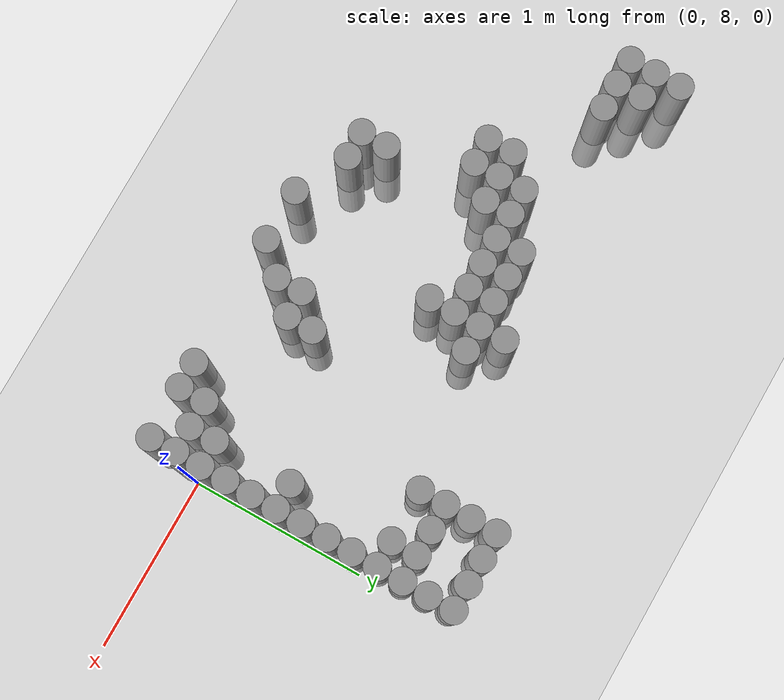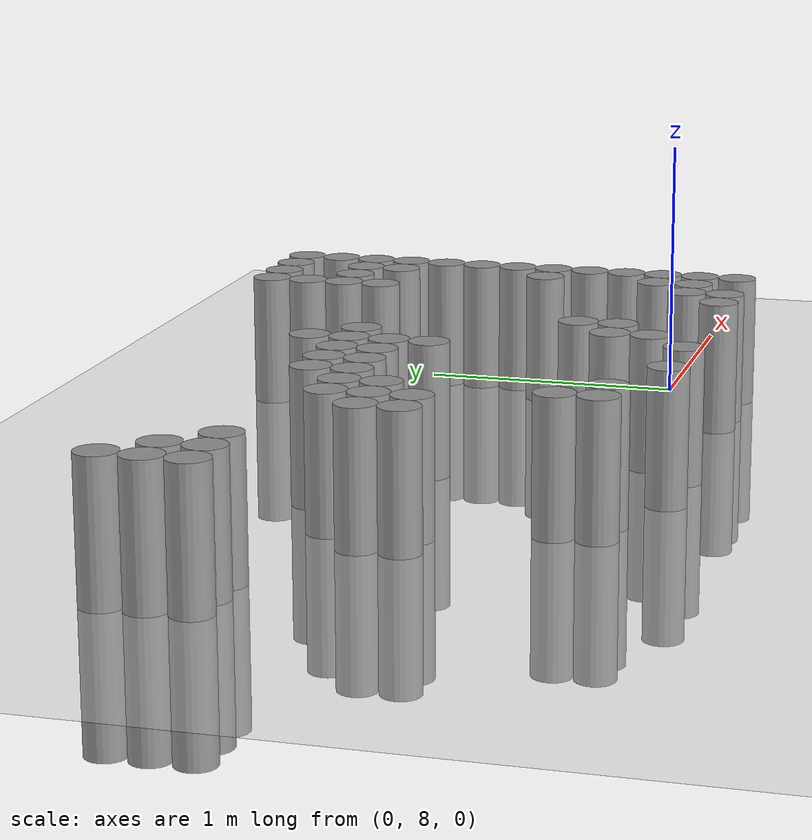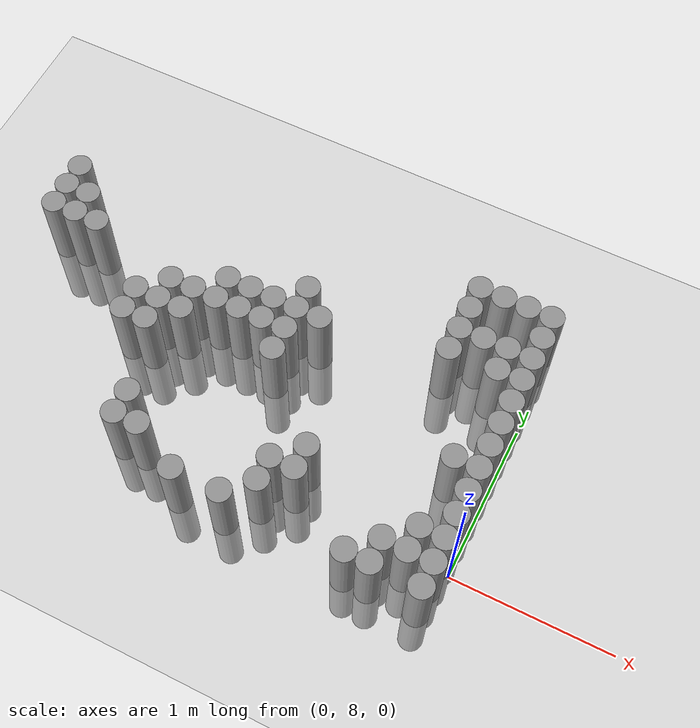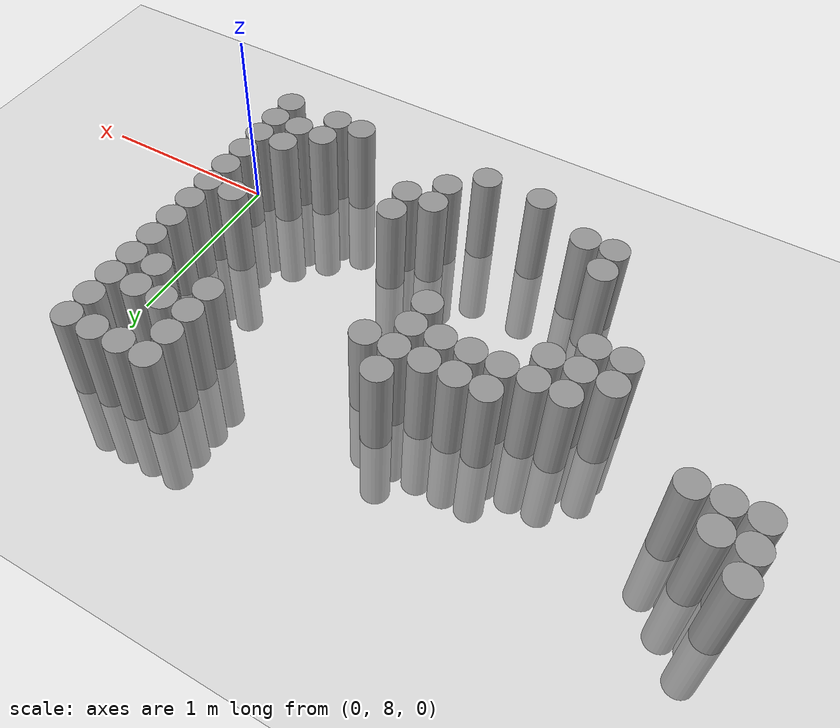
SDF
<sdf version="1.6">
 <world name="default">
  <model name="ground_plane">
   <static>1</static>
   <static>1</static>
   <link name="link">
    <collision name="collision">
     <geometry><plane><normal>0 0 1</normal><size>100 100</size></plane></geometry>
     <surface><friction><ode><mu>100</mu><mu2>50</mu2></ode></friction></surface>
    </collision>
    <visual name="visual">
     <cast_shadows>0</cast_shadows>
     <geometry><plane><normal>0 0 1</normal><size>100 100</size></plane></geometry>
     <material>
      <script><uri>file://media/materials/scripts/gazebo.material</uri><name>Gazebo/Grey</name></script>
     </material>
    </visual>
   </link>
  </model>
  <model name="unit_cylinder_177">
   <static>1</static>
   <pose>-3.075000 8.925000 0.000000 0.000000 0.000000 0.000000</pose>
   <link name="link">
    <inertial>
     <mass>1</mass>
     <inertia><ixx>0.145833</ixx><ixy>0</ixy><ixz>0</ixz><iyy>0.145833</iyy><iyz>0</iyz><izz>0.125</izz></inertia>
    </inertial>
    <collision name="collision">
     <geometry><cylinder><radius>0.075000</radius><length>1</length></cylinder></geometry>
    </collision>
    <visual name="visual">
     <geometry><cylinder><radius>0.075000</radius><length>1</length></cylinder></geometry>
     <material>
      <script><name>Gazebo/Grey</name><uri>file://media/materials/scripts/gazebo.material</uri></script>
     </material>
    </visual>
   </link>
  </model>
  <model name="unit_cylinder_178">
   <static>1</static>
   <pose>-3.075000 9.075000 0.000000 0.000000 0.000000 0.000000</pose>
   <link name="link">
    <inertial>
     <mass>1</mass>
     <inertia><ixx>0.145833</ixx><ixy>0</ixy><ixz>0</ixz><iyy>0.145833</iyy><iyz>0</iyz><izz>0.125</izz></inertia>
    </inertial>
    <collision name="collision">
     <geometry><cylinder><radius>0.075000</radius><length>1</length></cylinder></geometry>
    </collision>
    <visual name="visual">
     <geometry><cylinder><radius>0.075000</radius><length>1</length></cylinder></geometry>
     <material>
      <script><name>Gazebo/Grey</name><uri>file://media/materials/scripts/gazebo.material</uri></script>
     </material>
    </visual>
   </link>
  </model>
  <model name="unit_cylinder_179">
   <static>1</static>
   <pose>-3.075000 9.225000 0.000000 0.000000 0.000000 0.000000</pose>
   <link name="link">
    <inertial>
     <mass>1</mass>
     <inertia><ixx>0.145833</ixx><ixy>0</ixy><ixz>0</ixz><iyy>0.145833</iyy><iyz>0</iyz><izz>0.125</izz></inertia>
    </inertial>
    <collision name="collision">
     <geometry><cylinder><radius>0.075000</radius><length>1</length></cylinder></geometry>
    </collision>
    <visual name="visual">
     <geometry><cylinder><radius>0.075000</radius><length>1</length></cylinder></geometry>
     <material>
      <script><name>Gazebo/Grey</name><uri>file://media/materials/scripts/gazebo.material</uri></script>
     </material>
    </visual>
   </link>
  </model>
  <model name="unit_cylinder_183">
   <static>1</static>
   <pose>-2.925000 8.925000 0.000000 0.000000 0.000000 0.000000</pose>
   <link name="link">
    <inertial>
     <mass>1</mass>
     <inertia><ixx>0.145833</ixx><ixy>0</ixy><ixz>0</ixz><iyy>0.145833</iyy><iyz>0</iyz><izz>0.125</izz></inertia>
    </inertial>
    <collision name="collision">
     <geometry><cylinder><radius>0.075000</radius><length>1</length></cylinder></geometry>
    </collision>
    <visual name="visual">
     <geometry><cylinder><radius>0.075000</radius><length>1</length></cylinder></geometry>
     <material>
      <script><name>Gazebo/Grey</name><uri>file://media/materials/scripts/gazebo.material</uri></script>
     </material>
    </visual>
   </link>
  </model>
  <model name="unit_cylinder_184">
   <static>1</static>
   <pose>-2.925000 9.075000 0.000000 0.000000 0.000000 0.000000</pose>
   <link name="link">
    <inertial>
     <mass>1</mass>
     <inertia><ixx>0.145833</ixx><ixy>0</ixy><ixz>0</ixz><iyy>0.145833</iyy><iyz>0</iyz><izz>0.125</izz></inertia>
    </inertial>
    <collision name="collision">
     <geometry><cylinder><radius>0.075000</radius><length>1</length></cylinder></geometry>
    </collision>
    <visual name="visual">
     <geometry><cylinder><radius>0.075000</radius><length>1</length></cylinder></geometry>
     <material>
      <script><name>Gazebo/Grey</name><uri>file://media/materials/scripts/gazebo.material</uri></script>
     </material>
    </visual>
   </link>
  </model>
  <model name="unit_cylinder_185">
   <static>1</static>
   <pose>-2.775000 8.925000 0.000000 0.000000 0.000000 0.000000</pose>
   <link name="link">
    <inertial>
     <mass>1</mass>
     <inertia><ixx>0.145833</ixx><ixy>0</ixy><ixz>0</ixz><iyy>0.145833</iyy><iyz>0</iyz><izz>0.125</izz></inertia>
    </inertial>
    <collision name="collision">
     <geometry><cylinder><radius>0.075000</radius><length>1</length></cylinder></geometry>
    </collision>
    <visual name="visual">
     <geometry><cylinder><radius>0.075000</radius><length>1</length></cylinder></geometry>
     <material>
      <script><name>Gazebo/Grey</name><uri>file://media/materials/scripts/gazebo.material</uri></script>
     </material>
    </visual>
   </link>
  </model>
  <model name="unit_cylinder_186">
   <static>1</static>
   <pose>-2.325000 8.475000 0.000000 0.000000 0.000000 0.000000</pose>
   <link name="link">
    <inertial>
     <mass>1</mass>
     <inertia><ixx>0.145833</ixx><ixy>0</ixy><ixz>0</ixz><iyy>0.145833</iyy><iyz>0</iyz><izz>0.125</izz></inertia>
    </inertial>
    <collision name="collision">
     <geometry><cylinder><radius>0.075000</radius><length>1</length></cylinder></geometry>
    </collision>
    <visual name="visual">
     <geometry><cylinder><radius>0.075000</radius><length>1</length></cylinder></geometry>
     <material>
      <script><name>Gazebo/Grey</name><uri>file://media/materials/scripts/gazebo.material</uri></script>
     </material>
    </visual>
   </link>
  </model>
  <model name="unit_cylinder_187">
   <static>1</static>
   <pose>-2.325000 8.625000 0.000000 0.000000 0.000000 0.000000</pose>
   <link name="link">
    <inertial>
     <mass>1</mass>
     <inertia><ixx>0.145833</ixx><ixy>0</ixy><ixz>0</ixz><iyy>0.145833</iyy><iyz>0</iyz><izz>0.125</izz></inertia>
    </inertial>
    <collision name="collision">
     <geometry><cylinder><radius>0.075000</radius><length>1</length></cylinder></geometry>
    </collision>
    <visual name="visual">
     <geometry><cylinder><radius>0.075000</radius><length>1</length></cylinder></geometry>
     <material>
      <script><name>Gazebo/Grey</name><uri>file://media/materials/scripts/gazebo.material</uri></script>
     </material>
    </visual>
   </link>
  </model>
  <model name="unit_cylinder_188">
   <static>1</static>
   <pose>-2.175000 8.475000 0.000000 0.000000 0.000000 0.000000</pose>
   <link name="link">
    <inertial>
     <mass>1</mass>
     <inertia><ixx>0.145833</ixx><ixy>0</ixy><ixz>0</ixz><iyy>0.145833</iyy><iyz>0</iyz><izz>0.125</izz></inertia>
    </inertial>
    <collision name="collision">
     <geometry><cylinder><radius>0.075000</radius><length>1</length></cylinder></geometry>
    </collision>
    <visual name="visual">
     <geometry><cylinder><radius>0.075000</radius><length>1</length></cylinder></geometry>
     <material>
      <script><name>Gazebo/Grey</name><uri>file://media/materials/scripts/gazebo.material</uri></script>
     </material>
    </visual>
   </link>
  </model>
  <model name="unit_cylinder_189">
   <static>1</static>
   <pose>-2.175000 8.625000 0.000000 0.000000 0.000000 0.000000</pose>
   <link name="link">
    <inertial>
     <mass>1</mass>
     <inertia><ixx>0.145833</ixx><ixy>0</ixy><ixz>0</ixz><iyy>0.145833</iyy><iyz>0</iyz><izz>0.125</izz></inertia>
    </inertial>
    <collision name="collision">
     <geometry><cylinder><radius>0.075000</radius><length>1</length></cylinder></geometry>
    </collision>
    <visual name="visual">
     <geometry><cylinder><radius>0.075000</radius><length>1</length></cylinder></geometry>
     <material>
      <script><name>Gazebo/Grey</name><uri>file://media/materials/scripts/gazebo.material</uri></script>
     </material>
    </visual>
   </link>
  </model>
  <model name="unit_cylinder_190">
   <static>1</static>
   <pose>-2.175000 8.775000 0.000000 0.000000 0.000000 0.000000</pose>
   <link name="link">
    <inertial>
     <mass>1</mass>
     <inertia><ixx>0.145833</ixx><ixy>0</ixy><ixz>0</ixz><iyy>0.145833</iyy><iyz>0</iyz><izz>0.125</izz></inertia>
    </inertial>
    <collision name="collision">
     <geometry><cylinder><radius>0.075000</radius><length>1</length></cylinder></geometry>
    </collision>
    <visual name="visual">
     <geometry><cylinder><radius>0.075000</radius><length>1</length></cylinder></geometry>
     <material>
      <script><name>Gazebo/Grey</name><uri>file://media/materials/scripts/gazebo.material</uri></script>
     </material>
    </visual>
   </link>
  </model>
  <model name="unit_cylinder_195">
   <static>1</static>
   <pose>-2.025000 7.875000 0.000000 0.000000 0.000000 0.000000</pose>
   <link name="link">
    <inertial>
     <mass>1</mass>
     <inertia><ixx>0.145833</ixx><ixy>0</ixy><ixz>0</ixz><iyy>0.145833</iyy><iyz>0</iyz><izz>0.125</izz></inertia>
    </inertial>
    <collision name="collision">
     <geometry><cylinder><radius>0.075000</radius><length>1</length></cylinder></geometry>
    </collision>
    <visual name="visual">
     <geometry><cylinder><radius>0.075000</radius><length>1</length></cylinder></geometry>
     <material>
      <script><name>Gazebo/Grey</name><uri>file://media/materials/scripts/gazebo.material</uri></script>
     </material>
    </visual>
   </link>
  </model>
  <model name="unit_cylinder_196">
   <static>1</static>
   <pose>-2.025000 8.025000 0.000000 0.000000 0.000000 0.000000</pose>
   <link name="link">
    <inertial>
     <mass>1</mass>
     <inertia><ixx>0.145833</ixx><ixy>0</ixy><ixz>0</ixz><iyy>0.145833</iyy><iyz>0</iyz><izz>0.125</izz></inertia>
    </inertial>
    <collision name="collision">
     <geometry><cylinder><radius>0.075000</radius><length>1</length></cylinder></geometry>
    </collision>
    <visual name="visual">
     <geometry><cylinder><radius>0.075000</radius><length>1</length></cylinder></geometry>
     <material>
      <script><name>Gazebo/Grey</name><uri>file://media/materials/scripts/gazebo.material</uri></script>
     </material>
    </visual>
   </link>
  </model>
  <model name="unit_cylinder_197">
   <static>1</static>
   <pose>-2.025000 8.625000 0.000000 0.000000 0.000000 0.000000</pose>
   <link name="link">
    <inertial>
     <mass>1</mass>
     <inertia><ixx>0.145833</ixx><ixy>0</ixy><ixz>0</ixz><iyy>0.145833</iyy><iyz>0</iyz><izz>0.125</izz></inertia>
    </inertial>
    <collision name="collision">
     <geometry><cylinder><radius>0.075000</radius><length>1</length></cylinder></geometry>
    </collision>
    <visual name="visual">
     <geometry><cylinder><radius>0.075000</radius><length>1</length></cylinder></geometry>
     <material>
      <script><name>Gazebo/Grey</name><uri>file://media/materials/scripts/gazebo.material</uri></script>
     </material>
    </visual>
   </link>
  </model>
  <model name="unit_cylinder_198">
   <static>1</static>
   <pose>-2.025000 8.775000 0.000000 0.000000 0.000000 0.000000</pose>
   <link name="link">
    <inertial>
     <mass>1</mass>
     <inertia><ixx>0.145833</ixx><ixy>0</ixy><ixz>0</ixz><iyy>0.145833</iyy><iyz>0</iyz><izz>0.125</izz></inertia>
    </inertial>
    <collision name="collision">
     <geometry><cylinder><radius>0.075000</radius><length>1</length></cylinder></geometry>
    </collision>
    <visual name="visual">
     <geometry><cylinder><radius>0.075000</radius><length>1</length></cylinder></geometry>
     <material>
      <script><name>Gazebo/Grey</name><uri>file://media/materials/scripts/gazebo.material</uri></script>
     </material>
    </visual>
   </link>
  </model>
  <model name="unit_cylinder_205">
   <static>1</static>
   <pose>-1.875000 7.875000 0.000000 0.000000 0.000000 0.000000</pose>
   <link name="link">
    <inertial>
     <mass>1</mass>
     <inertia><ixx>0.145833</ixx><ixy>0</ixy><ixz>0</ixz><iyy>0.145833</iyy><iyz>0</iyz><izz>0.125</izz></inertia>
    </inertial>
    <collision name="collision">
     <geometry><cylinder><radius>0.075000</radius><length>1</length></cylinder></geometry>
    </collision>
    <visual name="visual">
     <geometry><cylinder><radius>0.075000</radius><length>1</length></cylinder></geometry>
     <material>
      <script><name>Gazebo/Grey</name><uri>file://media/materials/scripts/gazebo.material</uri></script>
     </material>
    </visual>
   </link>
  </model>
  <model name="unit_cylinder_206">
   <static>1</static>
   <pose>-1.875000 8.775000 0.000000 0.000000 0.000000 0.000000</pose>
   <link name="link">
    <inertial>
     <mass>1</mass>
     <inertia><ixx>0.145833</ixx><ixy>0</ixy><ixz>0</ixz><iyy>0.145833</iyy><iyz>0</iyz><izz>0.125</izz></inertia>
    </inertial>
    <collision name="collision">
     <geometry><cylinder><radius>0.075000</radius><length>1</length></cylinder></geometry>
    </collision>
    <visual name="visual">
     <geometry><cylinder><radius>0.075000</radius><length>1</length></cylinder></geometry>
     <material>
      <script><name>Gazebo/Grey</name><uri>file://media/materials/scripts/gazebo.material</uri></script>
     </material>
    </visual>
   </link>
  </model>
  <model name="unit_cylinder_207">
   <static>1</static>
   <pose>-1.875000 8.925000 0.000000 0.000000 0.000000 0.000000</pose>
   <link name="link">
    <inertial>
     <mass>1</mass>
     <inertia><ixx>0.145833</ixx><ixy>0</ixy><ixz>0</ixz><iyy>0.145833</iyy><iyz>0</iyz><izz>0.125</izz></inertia>
    </inertial>
    <collision name="collision">
     <geometry><cylinder><radius>0.075000</radius><length>1</length></cylinder></geometry>
    </collision>
    <visual name="visual">
     <geometry><cylinder><radius>0.075000</radius><length>1</length></cylinder></geometry>
     <material>
      <script><name>Gazebo/Grey</name><uri>file://media/materials/scripts/gazebo.material</uri></script>
     </material>
    </visual>
   </link>
  </model>
  <model name="unit_cylinder_215">
   <static>1</static>
   <pose>-1.725000 8.775000 0.000000 0.000000 0.000000 0.000000</pose>
   <link name="link">
    <inertial>
     <mass>1</mass>
     <inertia><ixx>0.145833</ixx><ixy>0</ixy><ixz>0</ixz><iyy>0.145833</iyy><iyz>0</iyz><izz>0.125</izz></inertia>
    </inertial>
    <collision name="collision">
     <geometry><cylinder><radius>0.075000</radius><length>1</length></cylinder></geometry>
    </collision>
    <visual name="visual">
     <geometry><cylinder><radius>0.075000</radius><length>1</length></cylinder></geometry>
     <material>
      <script><name>Gazebo/Grey</name><uri>file://media/materials/scripts/gazebo.material</uri></script>
     </material>
    </visual>
   </link>
  </model>
  <model name="unit_cylinder_216">
   <static>1</static>
   <pose>-1.725000 8.925000 0.000000 0.000000 0.000000 0.000000</pose>
   <link name="link">
    <inertial>
     <mass>1</mass>
     <inertia><ixx>0.145833</ixx><ixy>0</ixy><ixz>0</ixz><iyy>0.145833</iyy><iyz>0</iyz><izz>0.125</izz></inertia>
    </inertial>
    <collision name="collision">
     <geometry><cylinder><radius>0.075000</radius><length>1</length></cylinder></geometry>
    </collision>
    <visual name="visual">
     <geometry><cylinder><radius>0.075000</radius><length>1</length></cylinder></geometry>
     <material>
      <script><name>Gazebo/Grey</name><uri>file://media/materials/scripts/gazebo.material</uri></script>
     </material>
    </visual>
   </link>
  </model>
  <model name="unit_cylinder_222">
   <static>1</static>
   <pose>-1.575000 7.725000 0.000000 0.000000 0.000000 0.000000</pose>
   <link name="link">
    <inertial>
     <mass>1</mass>
     <inertia><ixx>0.145833</ixx><ixy>0</ixy><ixz>0</ixz><iyy>0.145833</iyy><iyz>0</iyz><izz>0.125</izz></inertia>
    </inertial>
    <collision name="collision">
     <geometry><cylinder><radius>0.075000</radius><length>1</length></cylinder></geometry>
    </collision>
    <visual name="visual">
     <geometry><cylinder><radius>0.075000</radius><length>1</length></cylinder></geometry>
     <material>
      <script><name>Gazebo/Grey</name><uri>file://media/materials/scripts/gazebo.material</uri></script>
     </material>
    </visual>
   </link>
  </model>
  <model name="unit_cylinder_223">
   <static>1</static>
   <pose>-1.575000 8.775000 0.000000 0.000000 0.000000 0.000000</pose>
   <link name="link">
    <inertial>
     <mass>1</mass>
     <inertia><ixx>0.145833</ixx><ixy>0</ixy><ixz>0</ixz><iyy>0.145833</iyy><iyz>0</iyz><izz>0.125</izz></inertia>
    </inertial>
    <collision name="collision">
     <geometry><cylinder><radius>0.075000</radius><length>1</length></cylinder></geometry>
    </collision>
    <visual name="visual">
     <geometry><cylinder><radius>0.075000</radius><length>1</length></cylinder></geometry>
     <material>
      <script><name>Gazebo/Grey</name><uri>file://media/materials/scripts/gazebo.material</uri></script>
     </material>
    </visual>
   </link>
  </model>
  <model name="unit_cylinder_224">
   <static>1</static>
   <pose>-1.575000 8.925000 0.000000 0.000000 0.000000 0.000000</pose>
   <link name="link">
    <inertial>
     <mass>1</mass>
     <inertia><ixx>0.145833</ixx><ixy>0</ixy><ixz>0</ixz><iyy>0.145833</iyy><iyz>0</iyz><izz>0.125</izz></inertia>
    </inertial>
    <collision name="collision">
     <geometry><cylinder><radius>0.075000</radius><length>1</length></cylinder></geometry>
    </collision>
    <visual name="visual">
     <geometry><cylinder><radius>0.075000</radius><length>1</length></cylinder></geometry>
     <material>
      <script><name>Gazebo/Grey</name><uri>file://media/materials/scripts/gazebo.material</uri></script>
     </material>
    </visual>
   </link>
  </model>
  <model name="unit_cylinder_228">
   <static>1</static>
   <pose>-1.425000 8.625000 0.000000 0.000000 0.000000 0.000000</pose>
   <link name="link">
    <inertial>
     <mass>1</mass>
     <inertia><ixx>0.145833</ixx><ixy>0</ixy><ixz>0</ixz><iyy>0.145833</iyy><iyz>0</iyz><izz>0.125</izz></inertia>
    </inertial>
    <collision name="collision">
     <geometry><cylinder><radius>0.075000</radius><length>1</length></cylinder></geometry>
    </collision>
    <visual name="visual">
     <geometry><cylinder><radius>0.075000</radius><length>1</length></cylinder></geometry>
     <material>
      <script><name>Gazebo/Grey</name><uri>file://media/materials/scripts/gazebo.material</uri></script>
     </material>
    </visual>
   </link>
  </model>
  <model name="unit_cylinder_229">
   <static>1</static>
   <pose>-1.425000 8.775000 0.000000 0.000000 0.000000 0.000000</pose>
   <link name="link">
    <inertial>
     <mass>1</mass>
     <inertia><ixx>0.145833</ixx><ixy>0</ixy><ixz>0</ixz><iyy>0.145833</iyy><iyz>0</iyz><izz>0.125</izz></inertia>
    </inertial>
    <collision name="collision">
     <geometry><cylinder><radius>0.075000</radius><length>1</length></cylinder></geometry>
    </collision>
    <visual name="visual">
     <geometry><cylinder><radius>0.075000</radius><length>1</length></cylinder></geometry>
     <material>
      <script><name>Gazebo/Grey</name><uri>file://media/materials/scripts/gazebo.material</uri></script>
     </material>
    </visual>
   </link>
  </model>
  <model name="unit_cylinder_230">
   <static>1</static>
   <pose>-1.425000 8.925000 0.000000 0.000000 0.000000 0.000000</pose>
   <link name="link">
    <inertial>
     <mass>1</mass>
     <inertia><ixx>0.145833</ixx><ixy>0</ixy><ixz>0</ixz><iyy>0.145833</iyy><iyz>0</iyz><izz>0.125</izz></inertia>
    </inertial>
    <collision name="collision">
     <geometry><cylinder><radius>0.075000</radius><length>1</length></cylinder></geometry>
    </collision>
    <visual name="visual">
     <geometry><cylinder><radius>0.075000</radius><length>1</length></cylinder></geometry>
     <material>
      <script><name>Gazebo/Grey</name><uri>file://media/materials/scripts/gazebo.material</uri></script>
     </material>
    </visual>
   </link>
  </model>
  <model name="unit_cylinder_231">
   <static>1</static>
   <pose>-1.425000 9.075000 0.000000 0.000000 0.000000 0.000000</pose>
   <link name="link">
    <inertial>
     <mass>1</mass>
     <inertia><ixx>0.145833</ixx><ixy>0</ixy><ixz>0</ixz><iyy>0.145833</iyy><iyz>0</iyz><izz>0.125</izz></inertia>
    </inertial>
    <collision name="collision">
     <geometry><cylinder><radius>0.075000</radius><length>1</length></cylinder></geometry>
    </collision>
    <visual name="visual">
     <geometry><cylinder><radius>0.075000</radius><length>1</length></cylinder></geometry>
     <material>
      <script><name>Gazebo/Grey</name><uri>file://media/materials/scripts/gazebo.material</uri></script>
     </material>
    </visual>
   </link>
  </model>
  <model name="unit_cylinder_234">
   <static>1</static>
   <pose>-1.275000 7.725000 0.000000 0.000000 0.000000 0.000000</pose>
   <link name="link">
    <inertial>
     <mass>1</mass>
     <inertia><ixx>0.145833</ixx><ixy>0</ixy><ixz>0</ixz><iyy>0.145833</iyy><iyz>0</iyz><izz>0.125</izz></inertia>
    </inertial>
    <collision name="collision">
     <geometry><cylinder><radius>0.075000</radius><length>1</length></cylinder></geometry>
    </collision>
    <visual name="visual">
     <geometry><cylinder><radius>0.075000</radius><length>1</length></cylinder></geometry>
     <material>
      <script><name>Gazebo/Grey</name><uri>file://media/materials/scripts/gazebo.material</uri></script>
     </material>
    </visual>
   </link>
  </model>
  <model name="unit_cylinder_235">
   <static>1</static>
   <pose>-1.275000 8.925000 0.000000 0.000000 0.000000 0.000000</pose>
   <link name="link">
    <inertial>
     <mass>1</mass>
     <inertia><ixx>0.145833</ixx><ixy>0</ixy><ixz>0</ixz><iyy>0.145833</iyy><iyz>0</iyz><izz>0.125</izz></inertia>
    </inertial>
    <collision name="collision">
     <geometry><cylinder><radius>0.075000</radius><length>1</length></cylinder></geometry>
    </collision>
    <visual name="visual">
     <geometry><cylinder><radius>0.075000</radius><length>1</length></cylinder></geometry>
     <material>
      <script><name>Gazebo/Grey</name><uri>file://media/materials/scripts/gazebo.material</uri></script>
     </material>
    </visual>
   </link>
  </model>
  <model name="unit_cylinder_238">
   <static>1</static>
   <pose>-1.125000 7.875000 0.000000 0.000000 0.000000 0.000000</pose>
   <link name="link">
    <inertial>
     <mass>1</mass>
     <inertia><ixx>0.145833</ixx><ixy>0</ixy><ixz>0</ixz><iyy>0.145833</iyy><iyz>0</iyz><izz>0.125</izz></inertia>
    </inertial>
    <collision name="collision">
     <geometry><cylinder><radius>0.075000</radius><length>1</length></cylinder></geometry>
    </collision>
    <visual name="visual">
     <geometry><cylinder><radius>0.075000</radius><length>1</length></cylinder></geometry>
     <material>
      <script><name>Gazebo/Grey</name><uri>file://media/materials/scripts/gazebo.material</uri></script>
     </material>
    </visual>
   </link>
  </model>
  <model name="unit_cylinder_239">
   <static>1</static>
   <pose>-1.125000 8.025000 0.000000 0.000000 0.000000 0.000000</pose>
   <link name="link">
    <inertial>
     <mass>1</mass>
     <inertia><ixx>0.145833</ixx><ixy>0</ixy><ixz>0</ixz><iyy>0.145833</iyy><iyz>0</iyz><izz>0.125</izz></inertia>
    </inertial>
    <collision name="collision">
     <geometry><cylinder><radius>0.075000</radius><length>1</length></cylinder></geometry>
    </collision>
    <visual name="visual">
     <geometry><cylinder><radius>0.075000</radius><length>1</length></cylinder></geometry>
     <material>
      <script><name>Gazebo/Grey</name><uri>file://media/materials/scripts/gazebo.material</uri></script>
     </material>
    </visual>
   </link>
  </model>
  <model name="unit_cylinder_243">
   <static>1</static>
   <pose>-0.975000 8.025000 0.000000 0.000000 0.000000 0.000000</pose>
   <link name="link">
    <inertial>
     <mass>1</mass>
     <inertia><ixx>0.145833</ixx><ixy>0</ixy><ixz>0</ixz><iyy>0.145833</iyy><iyz>0</iyz><izz>0.125</izz></inertia>
    </inertial>
    <collision name="collision">
     <geometry><cylinder><radius>0.075000</radius><length>1</length></cylinder></geometry>
    </collision>
    <visual name="visual">
     <geometry><cylinder><radius>0.075000</radius><length>1</length></cylinder></geometry>
     <material>
      <script><name>Gazebo/Grey</name><uri>file://media/materials/scripts/gazebo.material</uri></script>
     </material>
    </visual>
   </link>
  </model>
  <model name="unit_cylinder_244">
   <static>1</static>
   <pose>-0.975000 8.175000 0.000000 0.000000 0.000000 0.000000</pose>
   <link name="link">
    <inertial>
     <mass>1</mass>
     <inertia><ixx>0.145833</ixx><ixy>0</ixy><ixz>0</ixz><iyy>0.145833</iyy><iyz>0</iyz><izz>0.125</izz></inertia>
    </inertial>
    <collision name="collision">
     <geometry><cylinder><radius>0.075000</radius><length>1</length></cylinder></geometry>
    </collision>
    <visual name="visual">
     <geometry><cylinder><radius>0.075000</radius><length>1</length></cylinder></geometry>
     <material>
      <script><name>Gazebo/Grey</name><uri>file://media/materials/scripts/gazebo.material</uri></script>
     </material>
    </visual>
   </link>
  </model>
  <model name="unit_cylinder_249">
   <static>1</static>
   <pose>-0.525000 7.725000 0.000000 0.000000 0.000000 0.000000</pose>
   <link name="link">
    <inertial>
     <mass>1</mass>
     <inertia><ixx>0.145833</ixx><ixy>0</ixy><ixz>0</ixz><iyy>0.145833</iyy><iyz>0</iyz><izz>0.125</izz></inertia>
    </inertial>
    <collision name="collision">
     <geometry><cylinder><radius>0.075000</radius><length>1</length></cylinder></geometry>
    </collision>
    <visual name="visual">
     <geometry><cylinder><radius>0.075000</radius><length>1</length></cylinder></geometry>
     <material>
      <script><name>Gazebo/Grey</name><uri>file://media/materials/scripts/gazebo.material</uri></script>
     </material>
    </visual>
   </link>
  </model>
  <model name="unit_cylinder_250">
   <static>1</static>
   <pose>-0.525000 9.075000 0.000000 0.000000 0.000000 0.000000</pose>
   <link name="link">
    <inertial>
     <mass>1</mass>
     <inertia><ixx>0.145833</ixx><ixy>0</ixy><ixz>0</ixz><iyy>0.145833</iyy><iyz>0</iyz><izz>0.125</izz></inertia>
    </inertial>
    <collision name="collision">
     <geometry><cylinder><radius>0.075000</radius><length>1</length></cylinder></geometry>
    </collision>
    <visual name="visual">
     <geometry><cylinder><radius>0.075000</radius><length>1</length></cylinder></geometry>
     <material>
      <script><name>Gazebo/Grey</name><uri>file://media/materials/scripts/gazebo.material</uri></script>
     </material>
    </visual>
   </link>
  </model>
  <model name="unit_cylinder_251">
   <static>1</static>
   <pose>-0.525000 9.225000 0.000000 0.000000 0.000000 0.000000</pose>
   <link name="link">
    <inertial>
     <mass>1</mass>
     <inertia><ixx>0.145833</ixx><ixy>0</ixy><ixz>0</ixz><iyy>0.145833</iyy><iyz>0</iyz><izz>0.125</izz></inertia>
    </inertial>
    <collision name="collision">
     <geometry><cylinder><radius>0.075000</radius><length>1</length></cylinder></geometry>
    </collision>
    <visual name="visual">
     <geometry><cylinder><radius>0.075000</radius><length>1</length></cylinder></geometry>
     <material>
      <script><name>Gazebo/Grey</name><uri>file://media/materials/scripts/gazebo.material</uri></script>
     </material>
    </visual>
   </link>
  </model>
  <model name="unit_cylinder_252">
   <static>1</static>
   <pose>-0.525000 9.375000 0.000000 0.000000 0.000000 0.000000</pose>
   <link name="link">
    <inertial>
     <mass>1</mass>
     <inertia><ixx>0.145833</ixx><ixy>0</ixy><ixz>0</ixz><iyy>0.145833</iyy><iyz>0</iyz><izz>0.125</izz></inertia>
    </inertial>
    <collision name="collision">
     <geometry><cylinder><radius>0.075000</radius><length>1</length></cylinder></geometry>
    </collision>
    <visual name="visual">
     <geometry><cylinder><radius>0.075000</radius><length>1</length></cylinder></geometry>
     <material>
      <script><name>Gazebo/Grey</name><uri>file://media/materials/scripts/gazebo.material</uri></script>
     </material>
    </visual>
   </link>
  </model>
  <model name="unit_cylinder_253">
   <static>1</static>
   <pose>-0.525000 9.525000 0.000000 0.000000 0.000000 0.000000</pose>
   <link name="link">
    <inertial>
     <mass>1</mass>
     <inertia><ixx>0.145833</ixx><ixy>0</ixy><ixz>0</ixz><iyy>0.145833</iyy><iyz>0</iyz><izz>0.125</izz></inertia>
    </inertial>
    <collision name="collision">
     <geometry><cylinder><radius>0.075000</radius><length>1</length></cylinder></geometry>
    </collision>
    <visual name="visual">
     <geometry><cylinder><radius>0.075000</radius><length>1</length></cylinder></geometry>
     <material>
      <script><name>Gazebo/Grey</name><uri>file://media/materials/scripts/gazebo.material</uri></script>
     </material>
    </visual>
   </link>
  </model>
  <model name="unit_cylinder_261">
   <static>1</static>
   <pose>-0.375000 7.725000 0.000000 0.000000 0.000000 0.000000</pose>
   <link name="link">
    <inertial>
     <mass>1</mass>
     <inertia><ixx>0.145833</ixx><ixy>0</ixy><ixz>0</ixz><iyy>0.145833</iyy><iyz>0</iyz><izz>0.125</izz></inertia>
    </inertial>
    <collision name="collision">
     <geometry><cylinder><radius>0.075000</radius><length>1</length></cylinder></geometry>
    </collision>
    <visual name="visual">
     <geometry><cylinder><radius>0.075000</radius><length>1</length></cylinder></geometry>
     <material>
      <script><name>Gazebo/Grey</name><uri>file://media/materials/scripts/gazebo.material</uri></script>
     </material>
    </visual>
   </link>
  </model>
  <model name="unit_cylinder_262">
   <static>1</static>
   <pose>-0.375000 7.875000 0.000000 0.000000 0.000000 0.000000</pose>
   <link name="link">
    <inertial>
     <mass>1</mass>
     <inertia><ixx>0.145833</ixx><ixy>0</ixy><ixz>0</ixz><iyy>0.145833</iyy><iyz>0</iyz><izz>0.125</izz></inertia>
    </inertial>
    <collision name="collision">
     <geometry><cylinder><radius>0.075000</radius><length>1</length></cylinder></geometry>
    </collision>
    <visual name="visual">
     <geometry><cylinder><radius>0.075000</radius><length>1</length></cylinder></geometry>
     <material>
      <script><name>Gazebo/Grey</name><uri>file://media/materials/scripts/gazebo.material</uri></script>
     </material>
    </visual>
   </link>
  </model>
  <model name="unit_cylinder_263">
   <static>1</static>
   <pose>-0.375000 9.225000 0.000000 0.000000 0.000000 0.000000</pose>
   <link name="link">
    <inertial>
     <mass>1</mass>
     <inertia><ixx>0.145833</ixx><ixy>0</ixy><ixz>0</ixz><iyy>0.145833</iyy><iyz>0</iyz><izz>0.125</izz></inertia>
    </inertial>
    <collision name="collision">
     <geometry><cylinder><radius>0.075000</radius><length>1</length></cylinder></geometry>
    </collision>
    <visual name="visual">
     <geometry><cylinder><radius>0.075000</radius><length>1</length></cylinder></geometry>
     <material>
      <script><name>Gazebo/Grey</name><uri>file://media/materials/scripts/gazebo.material</uri></script>
     </material>
    </visual>
   </link>
  </model>
  <model name="unit_cylinder_264">
   <static>1</static>
   <pose>-0.375000 9.525000 0.000000 0.000000 0.000000 0.000000</pose>
   <link name="link">
    <inertial>
     <mass>1</mass>
     <inertia><ixx>0.145833</ixx><ixy>0</ixy><ixz>0</ixz><iyy>0.145833</iyy><iyz>0</iyz><izz>0.125</izz></inertia>
    </inertial>
    <collision name="collision">
     <geometry><cylinder><radius>0.075000</radius><length>1</length></cylinder></geometry>
    </collision>
    <visual name="visual">
     <geometry><cylinder><radius>0.075000</radius><length>1</length></cylinder></geometry>
     <material>
      <script><name>Gazebo/Grey</name><uri>file://media/materials/scripts/gazebo.material</uri></script>
     </material>
    </visual>
   </link>
  </model>
  <model name="unit_cylinder_267">
   <static>1</static>
   <pose>-0.225000 7.875000 0.000000 0.000000 0.000000 0.000000</pose>
   <link name="link">
    <inertial>
     <mass>1</mass>
     <inertia><ixx>0.145833</ixx><ixy>0</ixy><ixz>0</ixz><iyy>0.145833</iyy><iyz>0</iyz><izz>0.125</izz></inertia>
    </inertial>
    <collision name="collision">
     <geometry><cylinder><radius>0.075000</radius><length>1</length></cylinder></geometry>
    </collision>
    <visual name="visual">
     <geometry><cylinder><radius>0.075000</radius><length>1</length></cylinder></geometry>
     <material>
      <script><name>Gazebo/Grey</name><uri>file://media/materials/scripts/gazebo.material</uri></script>
     </material>
    </visual>
   </link>
  </model>
  <model name="unit_cylinder_268">
   <static>1</static>
   <pose>-0.225000 8.025000 0.000000 0.000000 0.000000 0.000000</pose>
   <link name="link">
    <inertial>
     <mass>1</mass>
     <inertia><ixx>0.145833</ixx><ixy>0</ixy><ixz>0</ixz><iyy>0.145833</iyy><iyz>0</iyz><izz>0.125</izz></inertia>
    </inertial>
    <collision name="collision">
     <geometry><cylinder><radius>0.075000</radius><length>1</length></cylinder></geometry>
    </collision>
    <visual name="visual">
     <geometry><cylinder><radius>0.075000</radius><length>1</length></cylinder></geometry>
     <material>
      <script><name>Gazebo/Grey</name><uri>file://media/materials/scripts/gazebo.material</uri></script>
     </material>
    </visual>
   </link>
  </model>
  <model name="unit_cylinder_269">
   <static>1</static>
   <pose>-0.225000 8.475000 0.000000 0.000000 0.000000 0.000000</pose>
   <link name="link">
    <inertial>
     <mass>1</mass>
     <inertia><ixx>0.145833</ixx><ixy>0</ixy><ixz>0</ixz><iyy>0.145833</iyy><iyz>0</iyz><izz>0.125</izz></inertia>
    </inertial>
    <collision name="collision">
     <geometry><cylinder><radius>0.075000</radius><length>1</length></cylinder></geometry>
    </collision>
    <visual name="visual">
     <geometry><cylinder><radius>0.075000</radius><length>1</length></cylinder></geometry>
     <material>
      <script><name>Gazebo/Grey</name><uri>file://media/materials/scripts/gazebo.material</uri></script>
     </material>
    </visual>
   </link>
  </model>
  <model name="unit_cylinder_270">
   <static>1</static>
   <pose>-0.225000 9.075000 0.000000 0.000000 0.000000 0.000000</pose>
   <link name="link">
    <inertial>
     <mass>1</mass>
     <inertia><ixx>0.145833</ixx><ixy>0</ixy><ixz>0</ixz><iyy>0.145833</iyy><iyz>0</iyz><izz>0.125</izz></inertia>
    </inertial>
    <collision name="collision">
     <geometry><cylinder><radius>0.075000</radius><length>1</length></cylinder></geometry>
    </collision>
    <visual name="visual">
     <geometry><cylinder><radius>0.075000</radius><length>1</length></cylinder></geometry>
     <material>
      <script><name>Gazebo/Grey</name><uri>file://media/materials/scripts/gazebo.material</uri></script>
     </material>
    </visual>
   </link>
  </model>
  <model name="unit_cylinder_271">
   <static>1</static>
   <pose>-0.225000 9.225000 0.000000 0.000000 0.000000 0.000000</pose>
   <link name="link">
    <inertial>
     <mass>1</mass>
     <inertia><ixx>0.145833</ixx><ixy>0</ixy><ixz>0</ixz><iyy>0.145833</iyy><iyz>0</iyz><izz>0.125</izz></inertia>
    </inertial>
    <collision name="collision">
     <geometry><cylinder><radius>0.075000</radius><length>1</length></cylinder></geometry>
    </collision>
    <visual name="visual">
     <geometry><cylinder><radius>0.075000</radius><length>1</length></cylinder></geometry>
     <material>
      <script><name>Gazebo/Grey</name><uri>file://media/materials/scripts/gazebo.material</uri></script>
     </material>
    </visual>
   </link>
  </model>
  <model name="unit_cylinder_272">
   <static>1</static>
   <pose>-0.225000 9.525000 0.000000 0.000000 0.000000 0.000000</pose>
   <link name="link">
    <inertial>
     <mass>1</mass>
     <inertia><ixx>0.145833</ixx><ixy>0</ixy><ixz>0</ixz><iyy>0.145833</iyy><iyz>0</iyz><izz>0.125</izz></inertia>
    </inertial>
    <collision name="collision">
     <geometry><cylinder><radius>0.075000</radius><length>1</length></cylinder></geometry>
    </collision>
    <visual name="visual">
     <geometry><cylinder><radius>0.075000</radius><length>1</length></cylinder></geometry>
     <material>
      <script><name>Gazebo/Grey</name><uri>file://media/materials/scripts/gazebo.material</uri></script>
     </material>
    </visual>
   </link>
  </model>
  <model name="unit_cylinder_290">
   <static>1</static>
   <pose>-0.075000 7.725000 0.000000 0.000000 0.000000 0.000000</pose>
   <link name="link">
    <inertial>
     <mass>1</mass>
     <inertia><ixx>0.145833</ixx><ixy>0</ixy><ixz>0</ixz><iyy>0.145833</iyy><iyz>0</iyz><izz>0.125</izz></inertia>
    </inertial>
    <collision name="collision">
     <geometry><cylinder><radius>0.075000</radius><length>1</length></cylinder></geometry>
    </collision>
    <visual name="visual">
     <geometry><cylinder><radius>0.075000</radius><length>1</length></cylinder></geometry>
     <material>
      <script><name>Gazebo/Grey</name><uri>file://media/materials/scripts/gazebo.material</uri></script>
     </material>
    </visual>
   </link>
  </model>
  <model name="unit_cylinder_291">
   <static>1</static>
   <pose>-0.075000 7.875000 0.000000 0.000000 0.000000 0.000000</pose>
   <link name="link">
    <inertial>
     <mass>1</mass>
     <inertia><ixx>0.145833</ixx><ixy>0</ixy><ixz>0</ixz><iyy>0.145833</iyy><iyz>0</iyz><izz>0.125</izz></inertia>
    </inertial>
    <collision name="collision">
     <geometry><cylinder><radius>0.075000</radius><length>1</length></cylinder></geometry>
    </collision>
    <visual name="visual">
     <geometry><cylinder><radius>0.075000</radius><length>1</length></cylinder></geometry>
     <material>
      <script><name>Gazebo/Grey</name><uri>file://media/materials/scripts/gazebo.material</uri></script>
     </material>
    </visual>
   </link>
  </model>
  <model name="unit_cylinder_292">
   <static>1</static>
   <pose>-0.075000 8.025000 0.000000 0.000000 0.000000 0.000000</pose>
   <link name="link">
    <inertial>
     <mass>1</mass>
     <inertia><ixx>0.145833</ixx><ixy>0</ixy><ixz>0</ixz><iyy>0.145833</iyy><iyz>0</iyz><izz>0.125</izz></inertia>
    </inertial>
    <collision name="collision">
     <geometry><cylinder><radius>0.075000</radius><length>1</length></cylinder></geometry>
    </collision>
    <visual name="visual">
     <geometry><cylinder><radius>0.075000</radius><length>1</length></cylinder></geometry>
     <material>
      <script><name>Gazebo/Grey</name><uri>file://media/materials/scripts/gazebo.material</uri></script>
     </material>
    </visual>
   </link>
  </model>
  <model name="unit_cylinder_293">
   <static>1</static>
   <pose>-0.075000 8.175000 0.000000 0.000000 0.000000 0.000000</pose>
   <link name="link">
    <inertial>
     <mass>1</mass>
     <inertia><ixx>0.145833</ixx><ixy>0</ixy><ixz>0</ixz><iyy>0.145833</iyy><iyz>0</iyz><izz>0.125</izz></inertia>
    </inertial>
    <collision name="collision">
     <geometry><cylinder><radius>0.075000</radius><length>1</length></cylinder></geometry>
    </collision>
    <visual name="visual">
     <geometry><cylinder><radius>0.075000</radius><length>1</length></cylinder></geometry>
     <material>
      <script><name>Gazebo/Grey</name><uri>file://media/materials/scripts/gazebo.material</uri></script>
     </material>
    </visual>
   </link>
  </model>
  <model name="unit_cylinder_294">
   <static>1</static>
   <pose>-0.075000 8.325000 0.000000 0.000000 0.000000 0.000000</pose>
   <link name="link">
    <inertial>
     <mass>1</mass>
     <inertia><ixx>0.145833</ixx><ixy>0</ixy><ixz>0</ixz><iyy>0.145833</iyy><iyz>0</iyz><izz>0.125</izz></inertia>
    </inertial>
    <collision name="collision">
     <geometry><cylinder><radius>0.075000</radius><length>1</length></cylinder></geometry>
    </collision>
    <visual name="visual">
     <geometry><cylinder><radius>0.075000</radius><length>1</length></cylinder></geometry>
     <material>
      <script><name>Gazebo/Grey</name><uri>file://media/materials/scripts/gazebo.material</uri></script>
     </material>
    </visual>
   </link>
  </model>
  <model name="unit_cylinder_295">
   <static>1</static>
   <pose>-0.075000 8.475000 0.000000 0.000000 0.000000 0.000000</pose>
   <link name="link">
    <inertial>
     <mass>1</mass>
     <inertia><ixx>0.145833</ixx><ixy>0</ixy><ixz>0</ixz><iyy>0.145833</iyy><iyz>0</iyz><izz>0.125</izz></inertia>
    </inertial>
    <collision name="collision">
     <geometry><cylinder><radius>0.075000</radius><length>1</length></cylinder></geometry>
    </collision>
    <visual name="visual">
     <geometry><cylinder><radius>0.075000</radius><length>1</length></cylinder></geometry>
     <material>
      <script><name>Gazebo/Grey</name><uri>file://media/materials/scripts/gazebo.material</uri></script>
     </material>
    </visual>
   </link>
  </model>
  <model name="unit_cylinder_296">
   <static>1</static>
   <pose>-0.075000 8.625000 0.000000 0.000000 0.000000 0.000000</pose>
   <link name="link">
    <inertial>
     <mass>1</mass>
     <inertia><ixx>0.145833</ixx><ixy>0</ixy><ixz>0</ixz><iyy>0.145833</iyy><iyz>0</iyz><izz>0.125</izz></inertia>
    </inertial>
    <collision name="collision">
     <geometry><cylinder><radius>0.075000</radius><length>1</length></cylinder></geometry>
    </collision>
    <visual name="visual">
     <geometry><cylinder><radius>0.075000</radius><length>1</length></cylinder></geometry>
     <material>
      <script><name>Gazebo/Grey</name><uri>file://media/materials/scripts/gazebo.material</uri></script>
     </material>
    </visual>
   </link>
  </model>
  <model name="unit_cylinder_297">
   <static>1</static>
   <pose>-0.075000 8.775000 0.000000 0.000000 0.000000 0.000000</pose>
   <link name="link">
    <inertial>
     <mass>1</mass>
     <inertia><ixx>0.145833</ixx><ixy>0</ixy><ixz>0</ixz><iyy>0.145833</iyy><iyz>0</iyz><izz>0.125</izz></inertia>
    </inertial>
    <collision name="collision">
     <geometry><cylinder><radius>0.075000</radius><length>1</length></cylinder></geometry>
    </collision>
    <visual name="visual">
     <geometry><cylinder><radius>0.075000</radius><length>1</length></cylinder></geometry>
     <material>
      <script><name>Gazebo/Grey</name><uri>file://media/materials/scripts/gazebo.material</uri></script>
     </material>
    </visual>
   </link>
  </model>
  <model name="unit_cylinder_298">
   <static>1</static>
   <pose>-0.075000 8.925000 0.000000 0.000000 0.000000 0.000000</pose>
   <link name="link">
    <inertial>
     <mass>1</mass>
     <inertia><ixx>0.145833</ixx><ixy>0</ixy><ixz>0</ixz><iyy>0.145833</iyy><iyz>0</iyz><izz>0.125</izz></inertia>
    </inertial>
    <collision name="collision">
     <geometry><cylinder><radius>0.075000</radius><length>1</length></cylinder></geometry>
    </collision>
    <visual name="visual">
     <geometry><cylinder><radius>0.075000</radius><length>1</length></cylinder></geometry>
     <material>
      <script><name>Gazebo/Grey</name><uri>file://media/materials/scripts/gazebo.material</uri></script>
     </material>
    </visual>
   </link>
  </model>
  <model name="unit_cylinder_299">
   <static>1</static>
   <pose>-0.075000 9.075000 0.000000 0.000000 0.000000 0.000000</pose>
   <link name="link">
    <inertial>
     <mass>1</mass>
     <inertia><ixx>0.145833</ixx><ixy>0</ixy><ixz>0</ixz><iyy>0.145833</iyy><iyz>0</iyz><izz>0.125</izz></inertia>
    </inertial>
    <collision name="collision">
     <geometry><cylinder><radius>0.075000</radius><length>1</length></cylinder></geometry>
    </collision>
    <visual name="visual">
     <geometry><cylinder><radius>0.075000</radius><length>1</length></cylinder></geometry>
     <material>
      <script><name>Gazebo/Grey</name><uri>file://media/materials/scripts/gazebo.material</uri></script>
     </material>
    </visual>
   </link>
  </model>
  <model name="unit_cylinder_300">
   <static>1</static>
   <pose>-0.075000 9.225000 0.000000 0.000000 0.000000 0.000000</pose>
   <link name="link">
    <inertial>
     <mass>1</mass>
     <inertia><ixx>0.145833</ixx><ixy>0</ixy><ixz>0</ixz><iyy>0.145833</iyy><iyz>0</iyz><izz>0.125</izz></inertia>
    </inertial>
    <collision name="collision">
     <geometry><cylinder><radius>0.075000</radius><length>1</length></cylinder></geometry>
    </collision>
    <visual name="visual">
     <geometry><cylinder><radius>0.075000</radius><length>1</length></cylinder></geometry>
     <material>
      <script><name>Gazebo/Grey</name><uri>file://media/materials/scripts/gazebo.material</uri></script>
     </material>
    </visual>
   </link>
  </model>
  <model name="unit_cylinder_301">
   <static>1</static>
   <pose>-0.075000 9.375000 0.000000 0.000000 0.000000 0.000000</pose>
   <link name="link">
    <inertial>
     <mass>1</mass>
     <inertia><ixx>0.145833</ixx><ixy>0</ixy><ixz>0</ixz><iyy>0.145833</iyy><iyz>0</iyz><izz>0.125</izz></inertia>
    </inertial>
    <collision name="collision">
     <geometry><cylinder><radius>0.075000</radius><length>1</length></cylinder></geometry>
    </collision>
    <visual name="visual">
     <geometry><cylinder><radius>0.075000</radius><length>1</length></cylinder></geometry>
     <material>
      <script><name>Gazebo/Grey</name><uri>file://media/materials/scripts/gazebo.material</uri></script>
     </material>
    </visual>
   </link>
  </model>
  <model name="unit_cylinder_302">
   <static>1</static>
   <pose>-0.075000 9.525000 0.000000 0.000000 0.000000 0.000000</pose>
   <link name="link">
    <inertial>
     <mass>1</mass>
     <inertia><ixx>0.145833</ixx><ixy>0</ixy><ixz>0</ixz><iyy>0.145833</iyy><iyz>0</iyz><izz>0.125</izz></inertia>
    </inertial>
    <collision name="collision">
     <geometry><cylinder><radius>0.075000</radius><length>1</length></cylinder></geometry>
    </collision>
    <visual name="visual">
     <geometry><cylinder><radius>0.075000</radius><length>1</length></cylinder></geometry>
     <material>
      <script><name>Gazebo/Grey</name><uri>file://media/materials/scripts/gazebo.material</uri></script>
     </material>
    </visual>
   </link>
  </model>
 </world>
</sdf>
